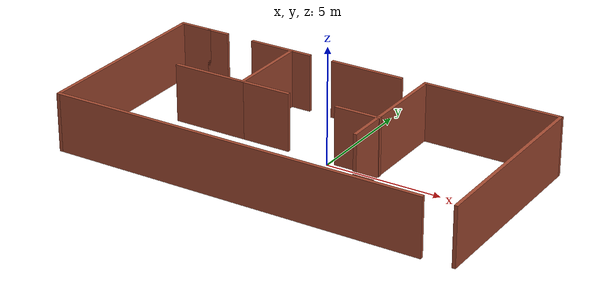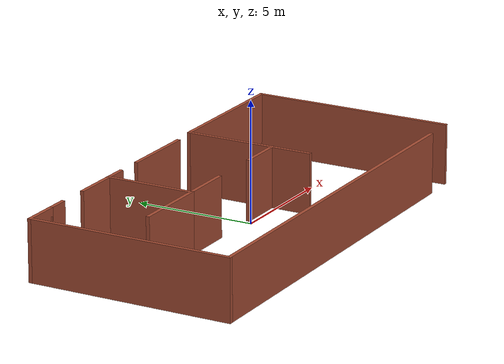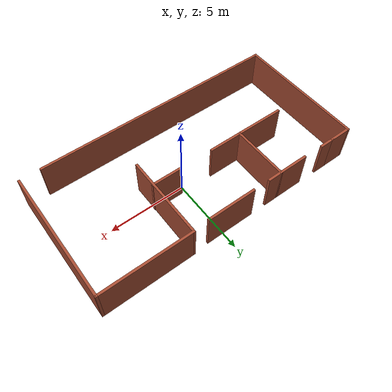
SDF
<?xml version='1.0'?>
<sdf version='1.7'>
  <model name='almacen2'>
    <pose>-0.78338 -0.24153 0 0 -0 0</pose>
    <link name='Wall_1'>
      <collision name='Wall_1_Collision'>
        <geometry>
          <box>
            <size>1.5 0.15 2.5</size>
          </box>
        </geometry>
        <pose>0 0 1.25 0 -0 0</pose>
      </collision>
      <visual name='Wall_1_Visual'>
        <pose>0 0 1.25 0 -0 0</pose>
        <geometry>
          <box>
            <size>1.5 0.15 2.5</size>
          </box>
        </geometry>
        <material>
          <script>
            <uri>file://media/materials/scripts/gazebo.material</uri>
            <name>Gazebo/Bricks</name>
          </script>
          <ambient>1 1 1 1</ambient>
        </material>
        <meta>
          <layer>0</layer>
        </meta>
      </visual>
      <pose>-8.06237 4.1559 0 0 -0 0</pose>
    </link>
    <link name='Wall_12'>
      <collision name='Wall_12_Collision'>
        <geometry>
          <box>
            <size>3.75 0.15 2.5</size>
          </box>
        </geometry>
        <pose>0 0 1.25 0 -0 0</pose>
      </collision>
      <visual name='Wall_12_Visual'>
        <pose>0 0 1.25 0 -0 0</pose>
        <geometry>
          <box>
            <size>3.75 0.15 2.5</size>
          </box>
        </geometry>
        <material>
          <script>
            <uri>file://media/materials/scripts/gazebo.material</uri>
            <name>Gazebo/Bricks</name>
          </script>
          <ambient>1 1 1 1</ambient>
        </material>
        <meta>
          <layer>0</layer>
        </meta>
      </visual>
      <pose>-3.30896 2.31753 0 0 -0 -1.5708</pose>
    </link>
    <link name='Wall_13'>
      <collision name='Wall_13_Collision'>
        <geometry>
          <box>
            <size>3.25 0.15 2.5</size>
          </box>
        </geometry>
        <pose>0 0 1.25 0 -0 0</pose>
      </collision>
      <visual name='Wall_13_Visual'>
        <pose>0 0 1.25 0 -0 0</pose>
        <geometry>
          <box>
            <size>3.25 0.15 2.5</size>
          </box>
        </geometry>
        <material>
          <script>
            <uri>file://media/materials/scripts/gazebo.material</uri>
            <name>Gazebo/Bricks</name>
          </script>
          <ambient>1 1 1 1</ambient>
        </material>
        <meta>
          <layer>0</layer>
        </meta>
      </visual>
      <pose>-4.85896 0.517528 0 0 -0 3.14159</pose>
    </link>
    <link name='Wall_15'>
      <collision name='Wall_15_Collision'>
        <geometry>
          <box>
            <size>1 0.15 2.5</size>
          </box>
        </geometry>
        <pose>0 0 1.25 0 -0 0</pose>
      </collision>
      <visual name='Wall_15_Visual'>
        <pose>0 0 1.25 0 -0 0</pose>
        <geometry>
          <box>
            <size>1 0.15 2.5</size>
          </box>
        </geometry>
        <material>
          <script>
            <uri>file://media/materials/scripts/gazebo.material</uri>
            <name>Gazebo/Bricks</name>
          </script>
          <ambient>1 1 1 1</ambient>
        </material>
        <meta>
          <layer>0</layer>
        </meta>
      </visual>
      <pose>-6.96237 4.1559 0 0 -0 0</pose>
    </link>
    <link name='Wall_17'>
      <collision name='Wall_17_Collision'>
        <geometry>
          <box>
            <size>2 0.15 2.5</size>
          </box>
        </geometry>
        <pose>0 0 1.25 0 -0 0</pose>
      </collision>
      <visual name='Wall_17_Visual'>
        <pose>0 0 1.25 0 -0 0</pose>
        <geometry>
          <box>
            <size>2 0.15 2.5</size>
          </box>
        </geometry>
        <material>
          <script>
            <uri>file://media/materials/scripts/gazebo.material</uri>
            <name>Gazebo/Bricks</name>
          </script>
          <ambient>1 1 1 1</ambient>
        </material>
        <meta>
          <layer>0</layer>
        </meta>
      </visual>
      <pose>-4.23396 4.11753 0 0 -0 3.14159</pose>
    </link>
    <link name='Wall_19'>
      <collision name='Wall_19_Collision'>
        <geometry>
          <box>
            <size>2.25 0.15 2.5</size>
          </box>
        </geometry>
        <pose>0 0 1.25 0 -0 0</pose>
      </collision>
      <visual name='Wall_19_Visual'>
        <pose>0 0 1.25 0 -0 0</pose>
        <geometry>
          <box>
            <size>2.25 0.15 2.5</size>
          </box>
        </geometry>
        <material>
          <script>
            <uri>file://media/materials/scripts/gazebo.material</uri>
            <name>Gazebo/Bricks</name>
          </script>
          <ambient>1 1 1 1</ambient>
        </material>
        <meta>
          <layer>0</layer>
        </meta>
      </visual>
      <pose>-2.25896 0.517528 0 0 -0 0</pose>
    </link>
    <link name='Wall_24'>
      <collision name='Wall_24_Collision'>
        <geometry>
          <box>
            <size>2 0.15 2.5</size>
          </box>
        </geometry>
        <pose>0 0 1.25 0 -0 0</pose>
      </collision>
      <visual name='Wall_24_Visual'>
        <pose>0 0 1.25 0 -0 0</pose>
        <geometry>
          <box>
            <size>2 0.15 2.5</size>
          </box>
        </geometry>
        <material>
          <script>
            <uri>file://media/materials/scripts/gazebo.material</uri>
            <name>Gazebo/Bricks</name>
          </script>
          <ambient>1 1 1 1</ambient>
        </material>
        <meta>
          <layer>0</layer>
        </meta>
      </visual>
      <pose>1.99065 0.494761 0 0 -0 3.14159</pose>
    </link>
    <link name='Wall_26'>
      <collision name='Wall_26_Collision'>
        <geometry>
          <box>
            <size>1 0.15 2.5</size>
          </box>
        </geometry>
        <pose>0 0 1.25 0 -0 0</pose>
      </collision>
      <visual name='Wall_26_Visual'>
        <pose>0 0 1.25 0 -0 0</pose>
        <geometry>
          <box>
            <size>1 0.15 2.5</size>
          </box>
        </geometry>
        <material>
          <script>
            <uri>file://media/materials/scripts/gazebo.material</uri>
            <name>Gazebo/Bricks</name>
          </script>
          <ambient>1 1 1 1</ambient>
        </material>
        <meta>
          <layer>0</layer>
        </meta>
      </visual>
      <pose>-2.88396 4.11753 0 0 -0 0</pose>
    </link>
    <link name='Wall_30'>
      <collision name='Wall_30_Collision'>
        <geometry>
          <box>
            <size>3.25 0.15 2.5</size>
          </box>
        </geometry>
        <pose>0 0 1.25 0 -0 0</pose>
      </collision>
      <visual name='Wall_30_Visual'>
        <pose>0 0 1.25 0 -0 0</pose>
        <geometry>
          <box>
            <size>3.25 0.15 2.5</size>
          </box>
        </geometry>
        <material>
          <script>
            <uri>file://media/materials/scripts/gazebo.material</uri>
            <name>Gazebo/Bricks</name>
          </script>
          <ambient>1 1 1 1</ambient>
        </material>
        <meta>
          <layer>0</layer>
        </meta>
      </visual>
      <pose>0.265921 4.10232 0 0 -0 0</pose>
    </link>
    <link name='Wall_4'>
      <collision name='Wall_4_Collision'>
        <geometry>
          <box>
            <size>8.5 0.15 2.5</size>
          </box>
        </geometry>
        <pose>0 0 1.25 0 -0 0</pose>
      </collision>
      <visual name='Wall_4_Visual'>
        <pose>0 0 1.25 0 -0 0</pose>
        <geometry>
          <box>
            <size>8.5 0.15 2.5</size>
          </box>
        </geometry>
        <material>
          <script>
            <uri>file://media/materials/scripts/gazebo.material</uri>
            <name>Gazebo/Bricks</name>
          </script>
          <ambient>0.760784 0.662745 0.627451 1</ambient>
        </material>
        <meta>
          <layer>0</layer>
        </meta>
      </visual>
      <pose>-8.73737 -0.019095 0 0 -0 -1.5708</pose>
    </link>
    <link name='Wall_5'>
      <collision name='Wall_5_Collision'>
        <geometry>
          <box>
            <size>16.25 0.15 2.5</size>
          </box>
        </geometry>
        <pose>0 0 1.25 0 -0 0</pose>
      </collision>
      <visual name='Wall_5_Visual'>
        <pose>0 0 1.25 0 -0 0</pose>
        <geometry>
          <box>
            <size>16.25 0.15 2.5</size>
          </box>
        </geometry>
        <material>
          <script>
            <uri>file://media/materials/scripts/gazebo.material</uri>
            <name>Gazebo/Bricks</name>
          </script>
          <ambient>1 1 1 1</ambient>
        </material>
        <meta>
          <layer>0</layer>
        </meta>
      </visual>
      <pose>-0.68737 -4.19409 0 0 -0 0</pose>
    </link>
    <link name='Wall_7'>
      <collision name='Wall_7_Collision'>
        <geometry>
          <box>
            <size>8.5 0.15 2.5</size>
          </box>
        </geometry>
        <pose>0 0 1.25 0 -0 0</pose>
      </collision>
      <visual name='Wall_7_Visual'>
        <pose>0 0 1.25 0 -0 0</pose>
        <geometry>
          <box>
            <size>8.5 0.15 2.5</size>
          </box>
        </geometry>
        <material>
          <script>
            <uri>file://media/materials/scripts/gazebo.material</uri>
            <name>Gazebo/Bricks</name>
          </script>
          <ambient>1 1 1 1</ambient>
        </material>
        <meta>
          <layer>0</layer>
        </meta>
      </visual>
      <pose>8.73737 0.019095 0 0 -0 1.5708</pose>
    </link>
    <link name='Wall_8'>
      <collision name='Wall_8_Collision'>
        <geometry>
          <box>
            <size>6 0.15 2.5</size>
          </box>
        </geometry>
        <pose>0 0 1.25 0 -0 0</pose>
      </collision>
      <visual name='Wall_8_Visual'>
        <pose>0 0 1.25 0 -0 0</pose>
        <geometry>
          <box>
            <size>6 0.15 2.5</size>
          </box>
        </geometry>
        <material>
          <script>
            <uri>file://media/materials/scripts/gazebo.material</uri>
            <name>Gazebo/Bricks</name>
          </script>
          <ambient>1 1 1 1</ambient>
        </material>
        <meta>
          <layer>0</layer>
        </meta>
      </visual>
      <pose>5.81237 4.19409 0 0 -0 3.14159</pose>
    </link>
    <link name='Wall_9'>
      <collision name='Wall_9_Collision'>
        <geometry>
          <box>
            <size>5.5 0.15 2.5</size>
          </box>
        </geometry>
        <pose>0 0 1.25 0 -0 0</pose>
      </collision>
      <visual name='Wall_9_Visual'>
        <pose>0 0 1.25 0 -0 0</pose>
        <geometry>
          <box>
            <size>5.5 0.15 2.5</size>
          </box>
        </geometry>
        <material>
          <script>
            <uri>file://media/materials/scripts/gazebo.material</uri>
            <name>Gazebo/Bricks</name>
          </script>
          <ambient>1 1 1 1</ambient>
        </material>
        <meta>
          <layer>0</layer>
        </meta>
      </visual>
      <pose>2.88737 1.5191 0 0 -0 -1.5708</pose>
    </link>
    <static>1</static>
  </model>
</sdf>
